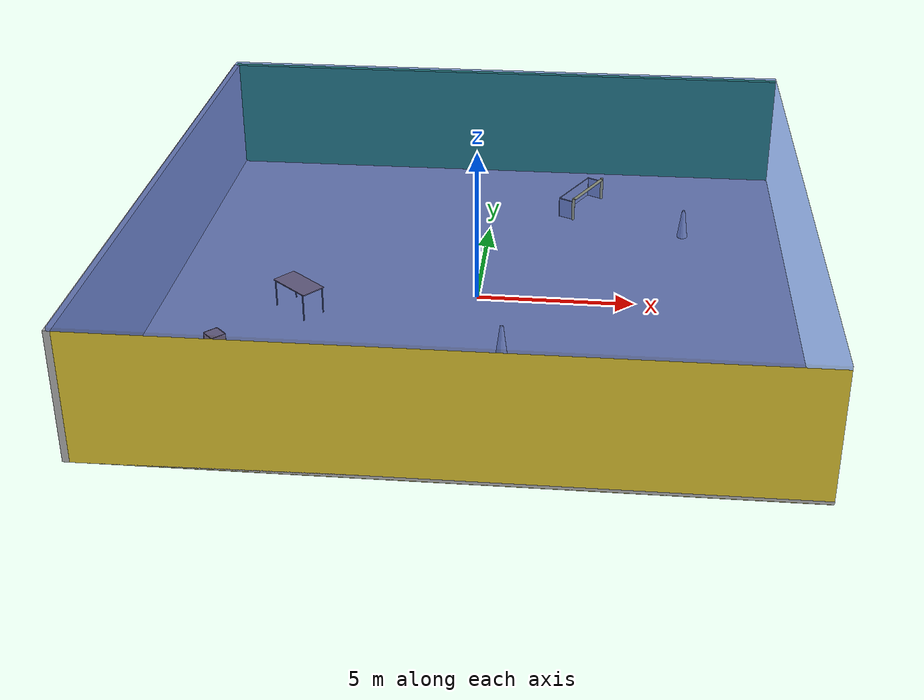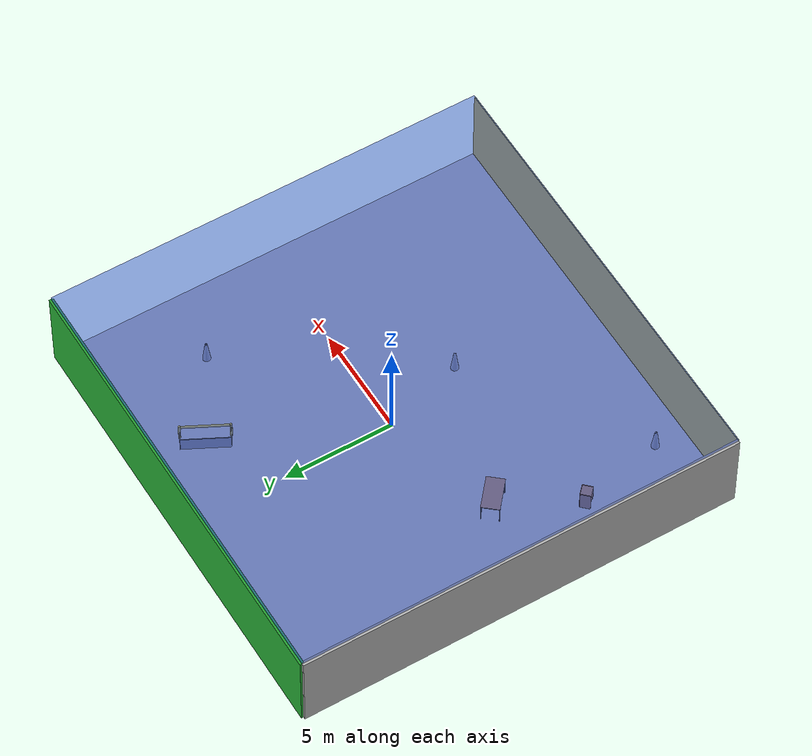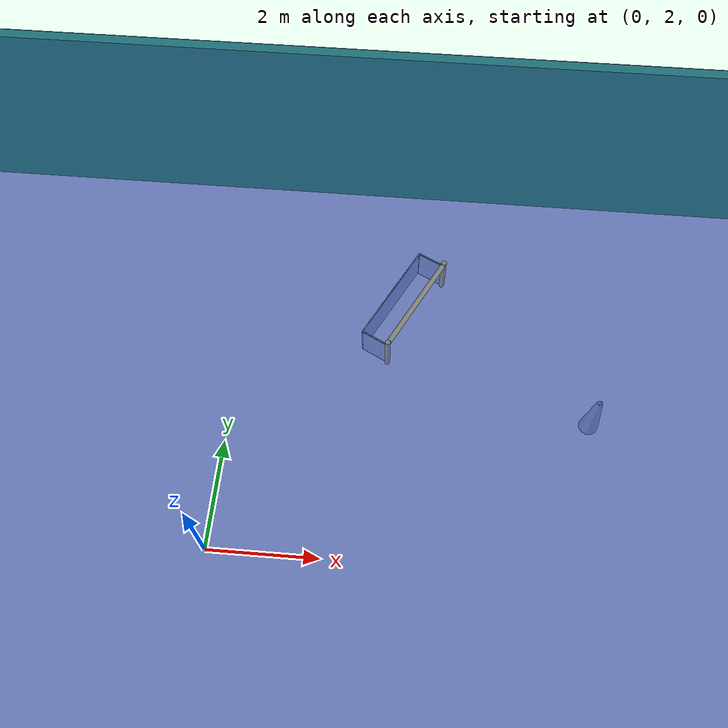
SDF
<sdf version="1.4">
 <world name="default">
  <physics type="ode">
   <max_step_size>0.001</max_step_size>
   <real_time_factor>1</real_time_factor>
   <real_time_update_rate>1000</real_time_update_rate>
   <gravity>0 0 -9.8</gravity>
  </physics>
  <scene><ambient>0.4 0.4 0.4 1</ambient><background>0.7 0.7 0.7 1</background><shadows>1</shadows></scene>
  <model name="Surrounding">
   <static>1</static>
   <link name="Ceiling">
    <collision name="Ceiling_Collision"><geometry><box><size>20 20 0.1</size></box></geometry></collision>
    <visual name="Ceiling_Visual">
     <geometry><box><size>20 20 0.1</size></box></geometry>
     <material>
      <script><uri>file://media/materials/scripts/gazebo.material</uri><name>Gazebo/BlueTransparent</name></script>
     </material>
    </visual>
    <pose>0 0 4.05 0 0 0</pose>
   </link>
   <link name="Wall_South">
    <collision name="Wall_South_Collision">
     <geometry><box><size>20 0 4</size></box></geometry>
     <pose>0 0 2 0 -0 0</pose>
    </collision>
    <visual name="Wall_South_Visual">
     <pose>0 0 2 0 -0 0</pose>
     <geometry><box><size>20 0 4</size></box></geometry>
     <material>
      <script><uri>file://media/materials/scripts/gazebo.material</uri><name>Gazebo/ZincYellow</name></script>
     </material>
    </visual>
    <velocity_decay><linear>0</linear><angular>0</angular></velocity_decay>
    <pose>0 -10 0 0 -0 0</pose>
   </link>
   <link name="Wall_East">
    <collision name="Wall_21_Collision">
     <geometry><box><size>20 0 4</size></box></geometry>
     <pose>0 0 2 0 -0 0</pose>
    </collision>
    <visual name="Wall_21_Visual">
     <pose>0 0 2 0 -0 0</pose>
     <geometry><box><size>20 0 4</size></box></geometry>
     <material>
      <script>
       <uri>file://media/materials/scripts/gazebo.material</uri>
       <name>Gazebo/OrangeTransparent</name>
      </script>
     </material>
    </visual>
    <velocity_decay><linear>0</linear><angular>0</angular></velocity_decay>
    <pose>10 0 0 0 -0 1.5708</pose>
   </link>
   <link name="Wall_North">
    <collision name="Wall_22_Collision">
     <geometry><box><size>20 0.2 4</size></box></geometry>
     <pose>0 0 2 0 -0 0</pose>
    </collision>
    <visual name="Wall_22_Visual">
     <pose>0 0 2 0 -0 0</pose>
     <geometry><box><size>20 0.2 4</size></box></geometry>
     <material>
      <script><uri>file://media/materials/scripts/gazebo.material</uri><name>Gazebo/Green</name></script>
     </material>
    </visual>
    <velocity_decay><linear>0</linear><angular>0</angular></velocity_decay>
    <pose>0 10 0 0 -0 0</pose>
   </link>
   <link name="Wall_West">
    <collision name="Wall_23_Collision">
     <geometry><box><size>20 0.2 4</size></box></geometry>
     <pose>0 0 2 0 -0 0</pose>
    </collision>
    <visual name="Wall_23_Visual">
     <pose>0 0 2 0 -0 0</pose>
     <geometry><box><size>20 0.2 4</size></box></geometry>
     <material>
      <script><uri>file://media/materials/scripts/gazebo.material</uri><name>Gazebo/Pioneer2Body</name></script>
     </material>
    </visual>
    <velocity_decay><linear>0</linear><angular>0</angular></velocity_decay>
    <pose>-10 0 0 0 0 -1.5708</pose>
   </link>
   <link name="Ground_link">
    <collision name="collision">
     <pose>0 0 .05 0 -0 0</pose>
     <geometry><box><size>20 20 0.1</size></box></geometry>
    </collision>
    <visual name="visual">
     <pose>0 0 .05 0 -0 0</pose>
     <geometry><box><size>20 20 0.1</size></box></geometry>
     <material>
      <script><uri>file://media/materials/scripts/gazebo.material</uri><name>Gazebo/PioneerBody</name></script>
     </material>
    </visual>
   </link>
   <static>1</static>
  </model>
  <spherical_coordinates>
   <surface_model>EARTH_WGS84</surface_model>
   <latitude_deg>0</latitude_deg>
   <longitude_deg>0</longitude_deg>
   <elevation>0</elevation>
   <heading_deg>0</heading_deg>
  </spherical_coordinates>
  <light name="lightball_0" type="diffuse">
   <diffuse>0.8 0.8 0.8 1</diffuse>
   <specular>0.2 0.2 0.2 1</specular>
   <attenuation>
    <range>100</range>
    <constant>0.7</constant>
    <linear>0.01</linear>
    <quadratic>0.001</quadratic>
   </attenuation>
   <direction>-0.5 0.1 -0.9</direction>
   <pose>-5.56227679905 5.44342215175 2.7770562357 0 0 0</pose>
  </light>
  <light name="lightball_1" type="diffuse">
   <diffuse>0.8 0.8 0.8 1</diffuse>
   <specular>0.2 0.2 0.2 1</specular>
   <attenuation>
    <range>100</range>
    <constant>0.7</constant>
    <linear>0.01</linear>
    <quadratic>0.001</quadratic>
   </attenuation>
   <direction>-0.5 0.1 -0.9</direction>
   <pose>-1.55457484995 -0.566999899376 2.61275702653 0 0 0</pose>
  </light>
  <light name="lightball_2" type="diffuse">
   <diffuse>0.8 0.8 0.8 1</diffuse>
   <specular>0.2 0.2 0.2 1</specular>
   <attenuation>
    <range>100</range>
    <constant>0.7</constant>
    <linear>0.01</linear>
    <quadratic>0.001</quadratic>
   </attenuation>
   <direction>-0.5 0.1 -0.9</direction>
   <pose>5.94844915976 2.62678721804 1.83769042003 0 0 0</pose>
  </light>
  <include>
   <uri>model://construction_cone</uri>
   <pose>-6.39736523136 -8.58616991392 0 0 0 0.564605124346</pose>
  </include>
  <include><uri>model://cabinet</uri><pose>-7.29225793429 -4.72865377488 0 0 0 0.796168012572</pose></include>
  <include><uri>model://table</uri><pose>-5.46395307786 -1.45025588937 0 0 0 2.43712388879</pose></include>
  <include>
   <uri>model://construction_cone</uri>
   <pose>1.05720354328 -3.63914695573 0 0 0 1.6404173467</pose>
  </include>
  <include>
   <uri>model://robocup_3Dsim_goal</uri>
   <pose>3.35205829939 6.76540487948 0 0 0 2.66089113775</pose>
  </include>
  <include>
   <uri>model://construction_cone</uri>
   <pose>6.67463769465 4.81451299969 0 0 0 2.3820962542</pose>
  </include>
 </world>
</sdf>

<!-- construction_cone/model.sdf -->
<sdf version="1.5">
  <model name="Construction Cone">
    <link name="link">
      <collision name="collision">
        <geometry>
          <mesh>
            <scale>10 10 10</scale>
            <uri>file://isr-testbed/construction_cone/meshes/construction_cone.dae</uri>
          </mesh>
        </geometry>
      </collision>
      <visual name="visual">
        <geometry>
          <mesh>
            <scale>10 10 10</scale>
            <uri>file://isr-testbed/construction_cone/meshes/construction_cone.dae</uri>
          </mesh>
        </geometry>
      </visual>
    </link>
  </model>
</sdf>

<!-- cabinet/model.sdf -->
<sdf version="1.5">
  <model name="cabinet">
    <static>true</static>
    <link name="cabinet_bottom_plate">
      <inertial>
        <pose>0 0 -1 0 0 0</pose>
        <inertia>
          <ixx>2.050000</ixx>
          <ixy>0</ixy>
          <ixz>0</ixz>
          <iyy>2.050000</iyy>
          <iyz>0</iyz>
          <izz>2.050000</izz>
        </inertia>
        <mass>25.000000</mass>
      </inertial>
      <collision name="cabinet_bottom_plate_geom">
        <pose>0 0 0.010000 0 0 0</pose>
        <geometry>
          <box>
            <size>0.450000 0.450000 0.020000</size>
          </box>
        </geometry>
      </collision>
      <visual name="cabinet_bottom_plate_geom_visual">
        <pose>0 0 0.010000 0 0 0</pose>
        <geometry>
          <box>
            <size>0.450000 0.450000 0.020000</size>
          </box>
        </geometry>
        <material>
          <script>
            <uri>model://media/materials/scripts/gazebo.material</uri>
            <name>Gazebo/Wood</name>
          </script>
        </material>
      </visual>
      <collision name="cabinet_bottom_plate_geom_cabinet_back_plate">
        <pose>0.235000 0 0.510000 0 0 0</pose>
        <geometry>
          <box>
            <size>0.020000 0.450000 1.020000</size>
          </box>
        </geometry>
      </collision>
      <visual name="cabinet_bottom_plate_geom_cabinet_back_plate_visual">
        <pose>0.235000 0 0.510000 0 0 0</pose>
        <geometry>
          <box>
            <size>0.020000 0.450000 1.020000</size>
          </box>
        </geometry>
        <material>
          <script>
            <uri>model://media/materials/scripts/gazebo.material</uri>
            <name>Gazebo/Wood</name>
          </script>
        </material>
      </visual>
      <collision name="cabinet_bottom_plate_geom_cabinet_left_plate">
        <pose>0 0.235000 0.510000 0 0 0</pose>
        <geometry>
          <box>
            <size>0.450000 0.020000 1.020000</size>
          </box>
        </geometry>
      </collision>
      <visual name="cabinet_bottom_plate_geom_cabinet_left_plate_visual">
        <pose>0 0.235000 0.510000 0 0 0</pose>
        <geometry>
          <box>
            <size>0.450000 0.020000 1.020000</size>
          </box>
        </geometry>
        <material>
          <script>
            <uri>model://media/materials/scripts/gazebo.material</uri>
            <name>Gazebo/Wood</name>
          </script>
        </material>
      </visual>
      <collision name="cabinet_bottom_plate_geom_cabinet_middle_plate">
        <pose>0 0 0.510000 0 0 0</pose>
        <geometry>
          <box>
            <size>0.450000 0.450000 0.020000</size>
          </box>
        </geometry>
      </collision>
      <visual name="cabinet_bottom_plate_geom_cabinet_middle_plate_visual">
        <pose>0 0 0.510000 0 0 0</pose>
        <geometry>
          <box>
            <size>0.450000 0.450000 0.020000</size>
          </box>
        </geometry>
        <material>
          <script>
            <uri>model://media/materials/scripts/gazebo.material</uri>
            <name>Gazebo/Wood</name>
          </script>
        </material>
      </visual>
      <collision name="cabinet_bottom_plate_geom_cabinet_right_plate">
        <pose>0 -0.235000 0.510000 0 0 0</pose>
        <geometry>
          <box>
            <size>0.450000 0.020000 1.020000</size>
          </box>
        </geometry>
      </collision>
      <visual name="cabinet_bottom_plate_geom_cabinet_right_plate_visual">
        <pose>0 -0.235000 0.510000 0 0 0</pose>
        <geometry>
          <box>
            <size>0.450000 0.020000 1.020000</size>
          </box>
        </geometry>
        <material>
          <script>
            <uri>model://media/materials/scripts/gazebo.material</uri>
            <name>Gazebo/Wood</name>
          </script>
        </material>
      </visual>
      <collision name="cabinet_bottom_plate_geom_cabinet_top_plate">
        <pose>0 0 1.010000 0 0 0</pose>
        <geometry>
          <box>
            <size>0.450000 0.450000 0.020000</size>
          </box>
        </geometry>
      </collision>
      <visual name="cabinet_bottom_plate_geom_cabinet_top_plate_visual">
        <pose>0 0 1.010000 0 0 0</pose>
        <geometry>
          <box>
            <size>0.450000 0.450000 0.020000</size>
          </box>
        </geometry>
        <material>
          <script>
            <uri>model://media/materials/scripts/gazebo.material</uri>
            <name>Gazebo/Wood</name>
          </script>
        </material>
      </visual>
    </link>
  </model>
</sdf>

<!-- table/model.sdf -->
<sdf version="1.5">
  <model name="table">
    <static>true</static>
    <link name="link">
      <collision name="surface">
        <pose>0 0 1.0 0 0 0</pose>
        <geometry>
          <box>
            <size>1.5 0.8 0.03</size>
          </box>
        </geometry>
        <surface>
          <friction>
            <ode>
              <mu>0.6</mu>
              <mu2>0.6</mu2>
            </ode>
          </friction>
        </surface>
      </collision>
      <visual name="visual1">
        <pose>0 0 1.0 0 0 0</pose>
        <geometry>
          <box>
            <size>1.5 0.8 0.03</size>
          </box>
        </geometry>
        <material>
          <script>
            <uri>model://media/materials/scripts/gazebo.material</uri>
            <name>Gazebo/Wood</name>
          </script>
        </material>
      </visual>
      <collision name="front_left_leg">
        <pose>0.68 0.38 0.5 0 0 0</pose>
        <geometry>
          <cylinder>
            <radius>0.02</radius>
            <length>1.0</length>
          </cylinder>
        </geometry>
      </collision>
      <visual name="front_left_leg">
        <pose>0.68 0.38 0.5 0 0 0</pose>
        <geometry>
          <cylinder>
            <radius>0.02</radius>
            <length>1.0</length>
          </cylinder>
        </geometry>
        <material>
          <script>
            <uri>model://media/materials/scripts/gazebo.material</uri>
            <name>Gazebo/Grey</name>
          </script>
        </material>
      </visual>
      <collision name="front_right_leg">
        <pose>0.68 -0.38 0.5 0 0 0</pose>
        <geometry>
          <cylinder>
            <radius>0.02</radius>
            <length>1.0</length>
          </cylinder>
        </geometry>
      </collision>
      <visual name="front_right_leg">
        <pose>0.68 -0.38 0.5 0 0 0</pose>
        <geometry>
          <cylinder>
            <radius>0.02</radius>
            <length>1.0</length>
          </cylinder>
        </geometry>
        <material>
          <script>
            <uri>model://media/materials/scripts/gazebo.material</uri>
            <name>Gazebo/Grey</name>
          </script>
        </material>
      </visual>
      <collision name="back_right_leg">
        <pose>-0.68 -0.38 0.5 0 0 0</pose>
        <geometry>
          <cylinder>
            <radius>0.02</radius>
            <length>1.0</length>
          </cylinder>
        </geometry>
      </collision>
      <visual name="back_right_leg">
        <pose>-0.68 -0.38 0.5 0 0 0</pose>
        <geometry>
          <cylinder>
            <radius>0.02</radius>
            <length>1.0</length>
          </cylinder>
        </geometry>
        <material>
          <script>
            <uri>model://media/materials/scripts/gazebo.material</uri>
            <name>Gazebo/Grey</name>
          </script>
        </material>
      </visual>
      <collision name="back_left_leg">
        <pose>-0.68 0.38 0.5 0 0 0</pose>
        <geometry>
          <cylinder>
            <radius>0.02</radius>
            <length>1.0</length>
          </cylinder>
        </geometry>
      </collision>
      <visual name="back_left_leg">
        <pose>-0.68 0.38 0.5 0 0 0</pose>
        <geometry>
          <cylinder>
            <radius>0.02</radius>
            <length>1.0</length>
          </cylinder>
        </geometry>
        <material>
          <script>
            <uri>model://media/materials/scripts/gazebo.material</uri>
            <name>Gazebo/Grey</name>
          </script>
        </material>
      </visual>
    </link>
  </model>
</sdf>

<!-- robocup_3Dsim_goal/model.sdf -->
<sdf version="1.5">
  <model name="robocup_3d_goal">
    <static>true</static>
    <link name="left_post">
      <pose>0 1.05 0.45 0 0 0</pose>
      <collision name="collision">
        <geometry>
          <cylinder>
            <radius>0.05</radius>
            <length>0.9</length>
          </cylinder>
        </geometry>
      </collision>
      <visual name="visual">
        <geometry>
          <cylinder>
            <radius>0.05</radius>
            <length>0.9</length>
          </cylinder>
        </geometry>
        <material>
          <script>
            <uri>file://media/materials/scripts/gazebo.material</uri>
            <name>Gazebo/ZincYellow</name>
          </script>
        </material>
      </visual>
    </link>
    <link name="left_support_horiz_lower">
      <pose>0.30 1.05 0.01 0 0 0</pose>
      <collision name="collision">
        <geometry>
          <box>
            <size>0.50 0.02 0.02</size>
          </box>
        </geometry>
      </collision>
      <visual name="visual">
        <geometry>
          <box>
            <size>0.50 0.02 0.02</size>
          </box>
        </geometry>
        <material>
          <script>
            <uri>file://media/materials/scripts/gazebo.material</uri>
            <name>Gazebo/White</name>
          </script>
        </material>
      </visual>
    </link>
    <link name="left_support_horiz_upper">
      <pose>0.30 1.05 0.79 0 0 0</pose>
      <collision name="collision">
        <geometry>
          <box>
            <size>0.50 0.02 0.02</size>
          </box>
        </geometry>
      </collision>
      <visual name="visual">
        <geometry>
          <box>
            <size>0.50 0.02 0.02</size>
          </box>
        </geometry>
        <material>
          <script>
            <uri>file://media/materials/scripts/gazebo.material</uri>
            <name>Gazebo/White</name>
          </script>
        </material>
      </visual>
    </link>
    <link name="left_support_vertical">
      <pose>0.56 1.05 0.4 0 1.5708 0</pose>
      <collision name="collision">
        <geometry>
          <box>
            <size>0.80 0.02 0.02</size>
          </box>
        </geometry>
      </collision>
      <visual name="visual">
        <geometry>
          <box>
            <size>0.80 0.02 0.02</size>
          </box>
        </geometry>
        <material>
          <script>
            <uri>file://media/materials/scripts/gazebo.material</uri>
            <name>Gazebo/White</name>
          </script>
        </material>
      </visual>
    </link>
    <link name="right_support_horiz_lower">
      <pose>0.30 -1.05 0.01 0 0 0</pose>
      <collision name="collision">
        <geometry>
          <box>
            <size>0.50 0.02 0.02</size>
          </box>
        </geometry>
      </collision>
      <visual name="visual">
        <geometry>
          <box>
            <size>0.50 0.02 0.02</size>
          </box>
        </geometry>
        <material>
          <script>
            <uri>file://media/materials/scripts/gazebo.material</uri>
            <name>Gazebo/White</name>
          </script>
        </material>
      </visual>
    </link>
    <link name="right_support_horiz_upper">
      <pose>0.30 -1.05 0.79 0 0 0</pose>
      <collision name="collision">
        <geometry>
          <box>
            <size>0.50 0.02 0.02</size>
          </box>
        </geometry>
      </collision>
      <visual name="visual">
        <geometry>
          <box>
            <size>0.50 0.02 0.02</size>
          </box>
        </geometry>
        <material>
          <script>
            <uri>file://media/materials/scripts/gazebo.material</uri>
            <name>Gazebo/White</name>
          </script>
        </material>
      </visual>
    </link>
    <link name="right_support_vertical">
      <pose>0.56 -1.05 0.4 0 1.5708 0</pose>
      <collision name="collision">
        <geometry>
          <box>
            <size>0.80 0.02 0.02</size>
          </box>
        </geometry>
      </collision>
      <visual name="visual">
        <geometry>
          <box>
            <size>0.80 0.02 0.02</size>
          </box>
        </geometry>
        <material>
          <script>
            <uri>file://media/materials/scripts/gazebo.material</uri>
            <name>Gazebo/White</name>
          </script>
        </material>
      </visual>
    </link>
    <link name="center_support_horiz_lower">
      <pose>0.56 0 0.01 0 1.5708 0</pose>
      <collision name="collision">
        <geometry>
          <box>
            <size>0.02 2.08 0.02</size>
          </box>
        </geometry>
      </collision>
      <visual name="visual">
        <geometry>
          <box>
            <size>0.02 2.08 0.02</size>
          </box>
        </geometry>
        <material>
          <script>
            <uri>file://media/materials/scripts/gazebo.material</uri>
            <name>Gazebo/White</name>
          </script>
        </material>
      </visual>
    </link>
    <link name="center_support_horiz_upper">
      <pose>0.56 0 0.79 0 1.5708 0</pose>
      <collision name="collision">
        <geometry>
          <box>
            <size>0.02 2.08 0.02</size>
          </box>
        </geometry>
      </collision>
      <visual name="visual">
        <geometry>
          <box>
            <size>0.02 2.08 0.02</size>
          </box>
        </geometry>
        <material>
          <script>
            <uri>file://media/materials/scripts/gazebo.material</uri>
            <name>Gazebo/White</name>
          </script>
        </material>
      </visual>
    </link>
    <link name="right_post">
      <pose>0 -1.05 0.45 0 0 0</pose>
      <collision name="collision">
        <geometry>
          <cylinder>
            <radius>0.05</radius>
            <length>0.9</length>
          </cylinder>
        </geometry>
      </collision>
      <visual name="visual">
        <geometry>
          <cylinder>
            <radius>0.05</radius>
            <length>0.9</length>
          </cylinder>
        </geometry>
        <material>
          <script>
            <uri>file://media/materials/scripts/gazebo.material</uri>
            <name>Gazebo/ZincYellow</name>
          </script>
        </material>
      </visual>
    </link>
    <link name="crossbar">
      <pose>0 0 0.85 1.57 1.57 0</pose>
      <collision name="collision">
        <geometry>
          <cylinder>
            <radius>0.05</radius>
            <length>2.0</length>
          </cylinder>
        </geometry>
      </collision>
      <visual name="visual">
        <geometry>
          <cylinder>
            <radius>0.05</radius>
            <length>2.0</length>
          </cylinder>
        </geometry>
        <material>
          <script>
            <uri>file://media/materials/scripts/gazebo.material</uri>
            <name>Gazebo/ZincYellow</name>
          </script>
        </material>
      </visual>
    </link>
    <link name="center_net">
      <pose>0.56 0 0.40 0 0 0</pose>
      <collision name="collision">
        <geometry>
          <box>
            <size>0.01 2.1 0.80</size>
          </box>
        </geometry>
      </collision>
      <visual name="visual">
        <geometry>
          <box>
            <size>0.01 2.1 0.80</size>
          </box>
        </geometry>
        <material>
          <script>
            <uri>model://../model_source/models/robocup09_spl_field/materials/scripts/</uri>
            <uri>model://../model_source/models/robocup09_spl_field/materials/textures/</uri>
            <name>RoboCup/Net</name>
          </script>
        </material>
      </visual>
    </link>
    <link name="left_net">
      <pose>0.30 1.05 0.40 0 0 0</pose>
      <collision name="collision">
        <geometry>
          <box>
            <size>0.50 0.01 0.76</size>
          </box>
        </geometry>
      </collision>
      <visual name="visual">
        <geometry>
          <box>
            <size>0.50 0.01 0.76</size>
          </box>
        </geometry>
        <material>
          <script>
            <uri>model://../model_source/models/robocup09_spl_field/materials/scripts/</uri>
            <uri>model://../model_source/models/robocup09_spl_field/materials/textures/</uri>
            <name>RoboCup/Net</name>
          </script>
        </material>
      </visual>
    </link>
    <link name="right_net">
      <pose>0.30 -1.05 0.40 0 0 0</pose>
      <collision name="collision">
        <geometry>
          <box>
            <size>0.50 0.01 0.76</size>
          </box>
        </geometry>
      </collision>
      <visual name="visual">
        <geometry>
          <box>
            <size>0.50 0.01 0.76</size>
          </box>
        </geometry>
        <material>
          <script>
            <uri>model://../model_source/models/robocup09_spl_field/materials/scripts/</uri>
            <uri>model://../model_source/models/robocup09_spl_field/materials/textures/</uri>
            <name>RoboCup/Net</name>
          </script>
        </material>
      </visual>
    </link>
  </model>
</sdf>
